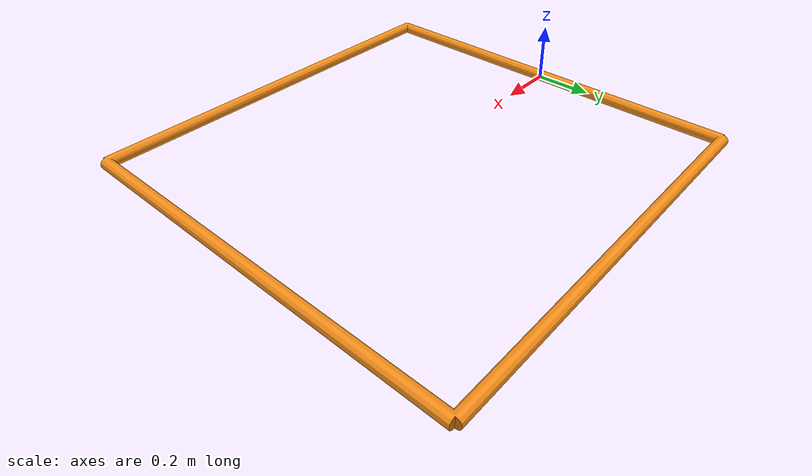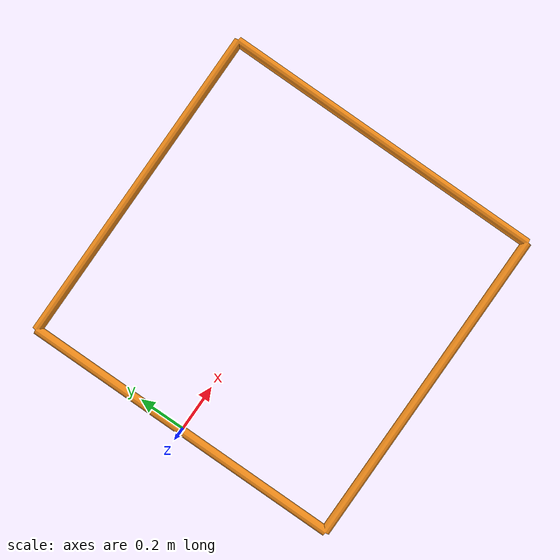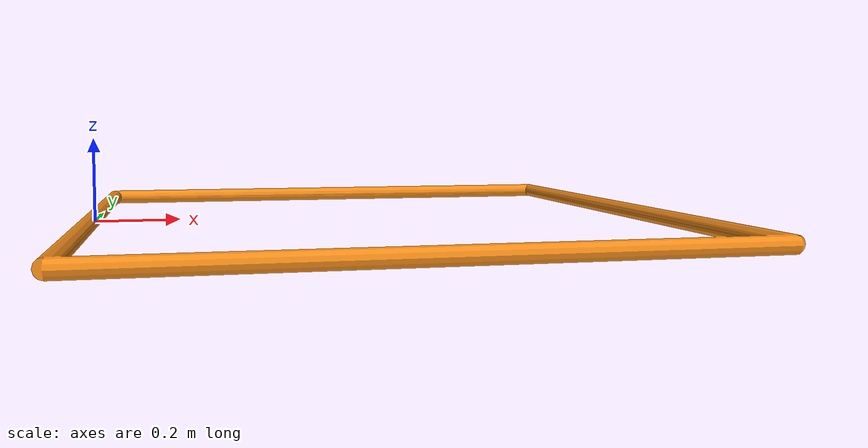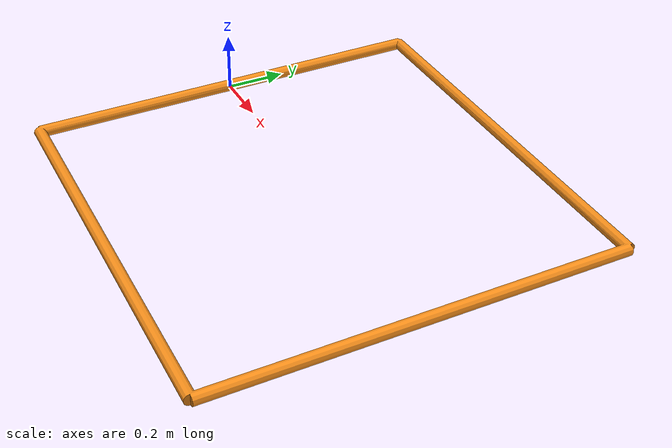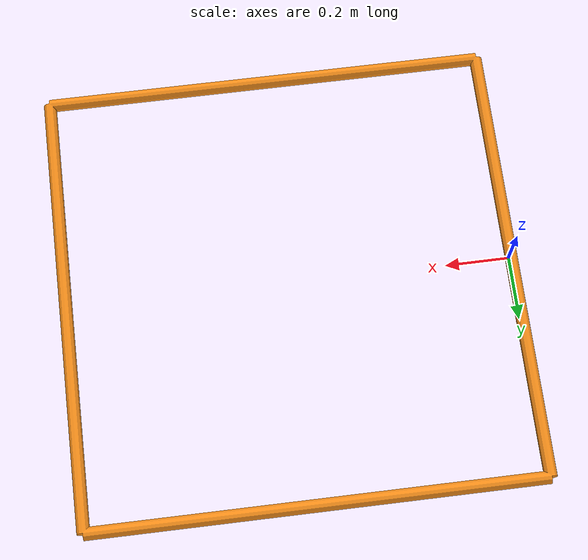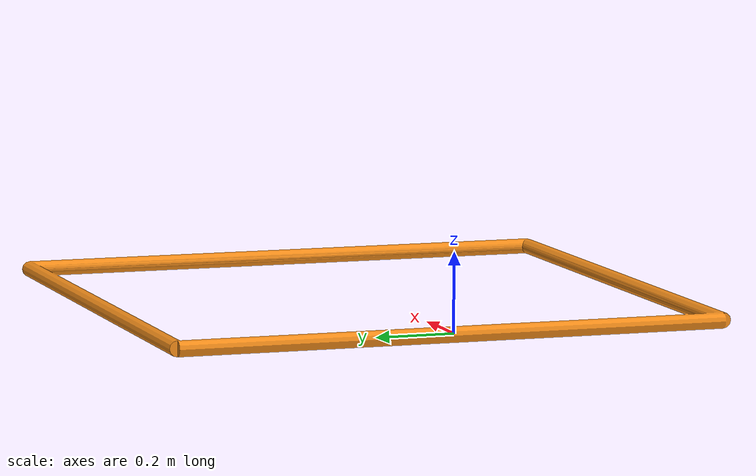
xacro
<?xml version="1.0"?>
<robot
  name="starting_gates" xmlns:xacro="http://www.ros.org/wiki/xacro">

  <xacro:include filename="$(find starting_gates)/urdf/materials.xacro" />
  <xacro:include filename="$(find starting_gates)/urdf/starting_gates.gazebo" />
  <link
    name="base_link">
    <inertial>
      <origin
        xyz="0.69 -1.6711E-06 2.1413E-16"
        rpy="0 0 0" />
      <mass
        value="30" />
      <inertia
        ixx="17.78"
        ixy="-1.5236E-10"
        ixz="0.000122"
        iyy="17.78"
        iyz="0.000122"
        izz="35.549" />
    </inertial>
    <visual>
      <origin
        xyz="0 0 0"
        rpy="0 0 0" />
      <geometry>
        <mesh
          filename="package://starting_gates/meshes/base_link.STL" />
      </geometry>
      <material
        name="orange">
      </material>
    </visual>
    <collision>
      <origin
        xyz="0 0 0"
        rpy="0 0 0" />
      <geometry>
        <mesh
          filename="package://starting_gates/meshes/base_link.STL" />
      </geometry>
    </collision>
  </link>
</robot>
